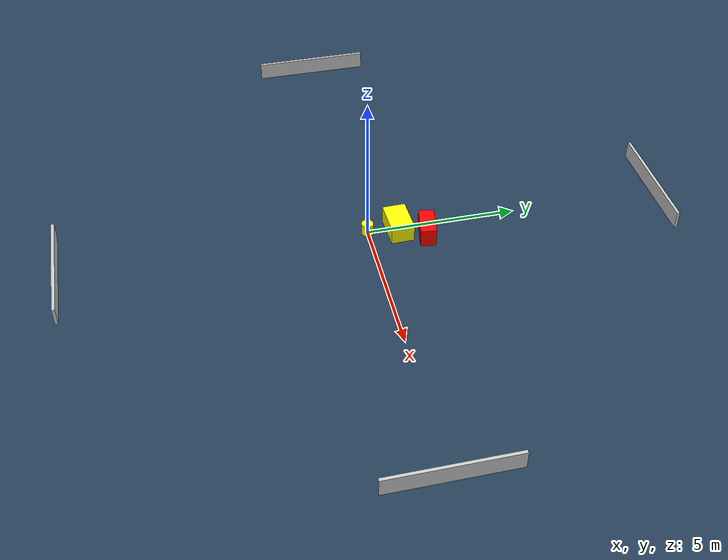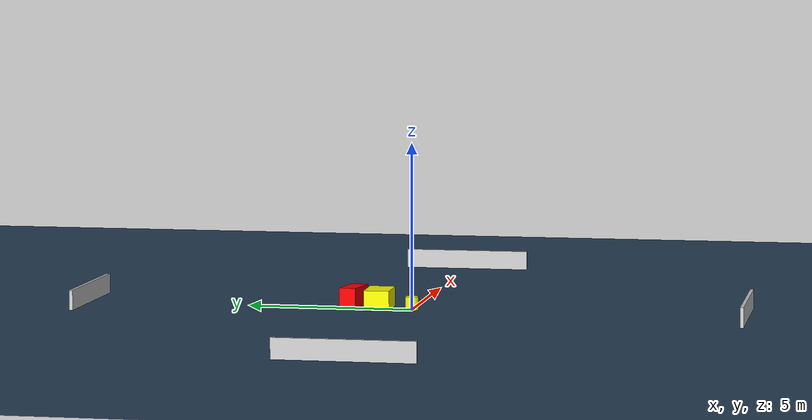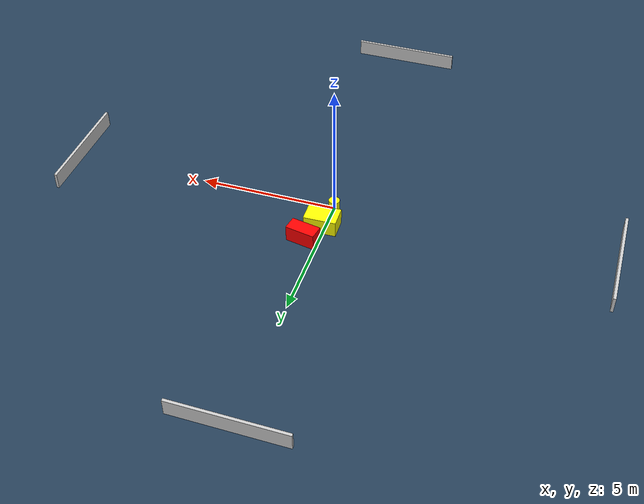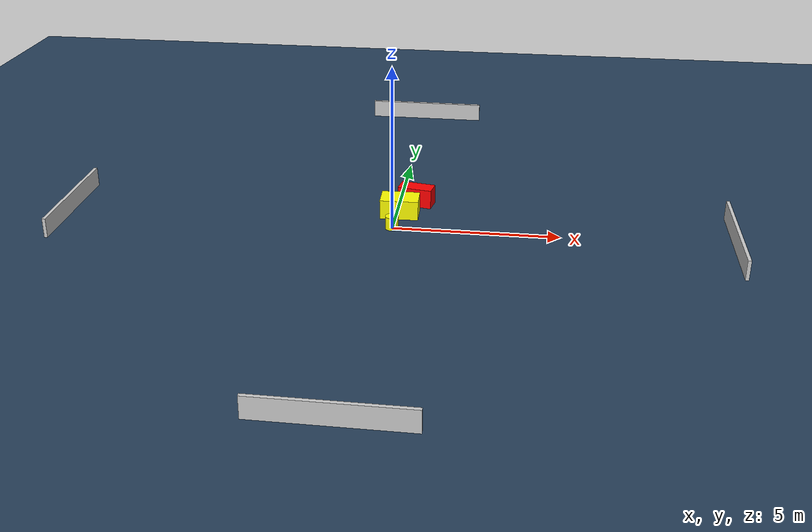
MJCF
<?xml version="1.0" ?>
<mujoco model="generated_environment">
  <option timestep="0.01" integrator="RK4" cone="elliptic"/>
  <default>
    <geom density="1"/>
  </default>
  <asset>
    <texture builtin="gradient" height="3072" name="skybox" rgb1="0.3 0.5 0.7" rgb2="0 0 0" type="skybox" width="512"/>
    <texture builtin="checker" height="300" name="groundplane" rgb1="0.2 0.3 0.4" rgb2="0.1 0.2 0.3" type="2d" width="300"/>
    <material name="groundplane" reflectance="0.2" texrepeat="5 5" texture="groundplane"/>
  </asset>
  <worldbody>
    <light dir="0 0 -1" directional="true" pos="0 0 1.5"/>
    <geom condim="3" friction="0.5 0.005 0.001" material="groundplane" name="floor" pos="0 0 0" size="0 0 0.05" type="plane"/>
    <body name="walls">
      <geom name="wall_1" condim="4" pos="-10.0 0.0 0.3" rgba="0.800000011920929 0.800000011920929 0.800000011920929 1.0" size="0.05 2.0 0.3" type="box"/>
      <geom name="wall_2" condim="4" pos="10.0 0.0 0.3" rgba="0.800000011920929 0.800000011920929 0.800000011920929 1.0" size="0.05 2.0 0.3" type="box"/>
      <geom name="wall_3" condim="4" pos="0.0 -10.0 0.3" rgba="0.800000011920929 0.800000011920929 0.800000011920929 1.0" size="2.0 0.05 0.3" type="box"/>
      <geom name="wall_4" condim="4" pos="0.0 10.0 0.3" rgba="0.800000011920929 0.800000011920929 0.800000011920929 1.0" size="2.0 0.05 0.3" type="box"/>
    </body>
    <body name="robot">
      <joint name="joint_x" type="slide" pos="0 0 0" axis="1 0 0"/>
      <joint name="joint_y" type="slide" pos="0 0 0" axis="0 1 0"/>
      <geom name="robot" type="cylinder" pos="0.0 0.0 0.2" size="0.2 0.2 0.0" mass="5.0" friction="1.0 0.005 0.0001" condim="4" rgba="1.0 1.0 0.0 1.0"/>
    </body>
    <body name="obstacle_1_movable">
      <geom name="obstacle_1_movable" condim="4" pos="0.11298086615509859 1.0107819381949024 0.3" euler="0 0 91.62137358976051" friction="0.0 0.005 0.001" rgba="1.0 1.0 0.0 1.0" size="0.3821697323502259 0.5839688092009043 0.3" type="box" mass="0.1"/>
      <joint type="free"/>
    </body>
    <body name="obstacle_2_static">
      <geom name="obstacle_2_static" condim="4" pos="0.5231325319393721 1.885115363113667 0.3" euler="0 0 349.65085343603516" friction="0.0 0.005 0.001" rgba="1.0 0.0 0.0 1.0" size="0.5346402680245257 0.25737361326463204 0.3" type="box"/>
    </body>
  </worldbody>
  <actuator>
    <motor name="actuator_x" joint="joint_x" gear="1" ctrlrange="-1 1"/>
    <motor name="actuator_y" joint="joint_y" gear="1" ctrlrange="-1 1"/>
  </actuator>
</mujoco>
